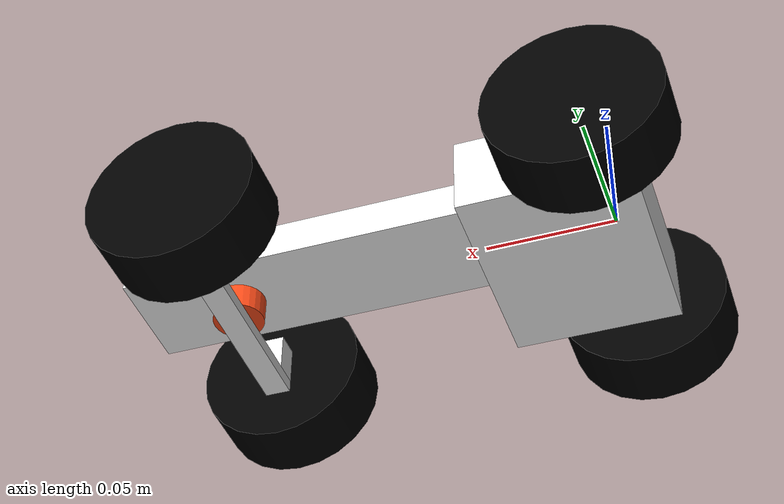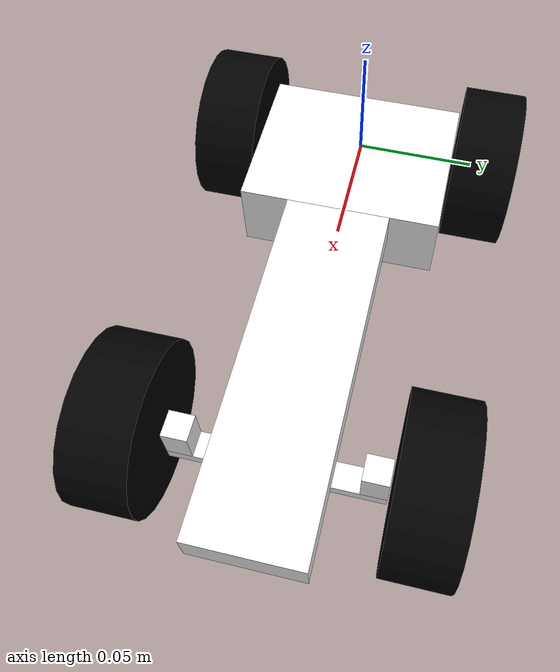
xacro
<?xml version="1.0"?>
<robot xmlns:xacro="http://www.ros.org/wiki/xacro" >

    <xacro:include filename="inertial_macros.xacro"/>

    <material name="white">
        <color rgba="1 1 1 1" />
    </material>

    <material name="orange">
        <color rgba="1 0.3 0.1 1"/>
    </material>

    <material name="blue">
        <color rgba="0.2 0.2 1 1"/>
    </material>

    <material name="black">
        <color rgba="0 0 0 1"/>
    </material>

    <!-- BASE LINK -->

    <link name="base_link">

    </link>

    <!-- CHASSIS LINK 1 -->

    <joint name="chassis_joint1" type="fixed">
        <parent link="base_link"/>
        <child link="chassis1"/>
        <origin xyz="0 0 0"/>
    </joint>

    <link name="chassis1">
        <visual>
            <origin xyz="0.0177 0 0"/>
            <geometry>
                <box size="0.0646 0.0825 0.03175"/>
            </geometry>
            <material name="white"/>
        </visual>
        <collision>
            <origin xyz="0.0177 0 0"/>
            <geometry>
                <box size="0.0646 0.0825 0.03175"/>
            </geometry>
        </collision>
        <xacro:inertial_box mass ="0.15" x="0.0646" y="0.0825" z="0.03175">
            <origin xyz="0.0177 0 0"/>
        </xacro:inertial_box>
    </link>

    <!-- CHASSIS LINK 2 -->

    <joint name="chassis_joint2" type="fixed">
        <parent link="chassis1"/>
        <child link="chassis2"/>
        <origin xyz="0.05 0 0
        "/>
    </joint>

    <link name="chassis2">
        <visual>
            <origin xyz="0.0702 0 0.008375"/>
            <geometry>
                <box size="0.1404 0.0425 0.015"/>
            </geometry>
            <material name="white"/>
        </visual>
        <collision>
            <origin xyz="0.0702 0 0.008375"/>
            <geometry>
                <box size="0.1404 0.0425 0.015"/>
            </geometry>
        </collision>
        <xacro:inertial_box mass ="0.2" x="0.1404" y="0.0425" z="0.015">
            <origin xyz="0.0702 0 0.008375"/>
        </xacro:inertial_box>
    </link>

    <!-- REAR LEFT WHEEL LINK -->

    <joint name="rear_left_wheel_joint" type="continuous">
        <parent link="base_link"/>
        <child link="rear_left_wheel"/>
        <origin xyz="0 0.055 0" rpy="-${pi/2} 0 0"/>
        <axis xyz="0 0 1"/>
    </joint>

    <link name="rear_left_wheel">
        <visual>
            <geometry>
                <cylinder radius="0.033" length="0.0255"/>
            </geometry>
            <material name="black"/>
        </visual>
        <collision>
            <geometry>
                <cylinder radius="0.033" length="0.0255"/>
            </geometry>
        </collision>
        <xacro:inertial_cylinder mass="0.075" length="0.0255" radius="0.033">
            <origin xyz="0 0 0"/>
        </xacro:inertial_cylinder>
    </link>

    <!-- REAR RIGHT WHEEL LINK -->

    <joint name="rear_right_wheel_joint" type="continuous">
        <parent link="base_link"/>
        <child link="rear_right_wheel"/>
        <origin xyz="0 -0.055 0" rpy="${pi/2} 0 0"/>
        <axis xyz="0 0 -1"/>
    </joint>

    <link name="rear_right_wheel">
        <visual>
            <geometry>
                <cylinder radius="0.033" length="0.0255"/>
            </geometry>
            <material name="black"/>
        </visual>
        <collision>
            <geometry>
                <cylinder radius="0.033" length="0.0255"/>
            </geometry>
        </collision>
        <xacro:inertial_cylinder mass="0.075" length="0.0255" radius="0.033">
            <origin xyz="0 0 0" rpy="0 0 0"/>
        </xacro:inertial_cylinder>
    </link>

    <!-- STEERING LINK -->

    <joint name="steer_joint" type="revolute">
        <parent link="base_link"/>
        <child link="steer_link"/>
        <origin xyz="0.150 0 0"/>
        <axis xyz="0 0 1"/>
        <limit lower="-0.5" upper="0.5" effort="0.0" velocity="0.0"/>
    </joint>

    <link name="steer_link">
        <visual>
            <origin xyz="0 0 -0.004125"/>
            <geometry>
                <cylinder radius="0.01" length="0.01"/>
            </geometry>
            <material name="orange"/>
        </visual>
        <collision>
            <origin xyz="0 0 -0.004125"/>
            <geometry>
                <cylinder radius="0.01" length="0.01"/>
            </geometry>
        </collision>
        <xacro:inertial_cylinder mass="0.015" length="0.01" radius="0.01">
            <origin xyz="0 0 -0.004125" rpy="0 0 0"/>
        </xacro:inertial_cylinder>
    </link>

    <!-- CONNECTING ROD -->

    <joint name="connecting_rod_joint" type="fixed">
        <parent link="steer_link"/>
        <child link="connecting_rod_link"/>
        <origin xyz="0 0 -0.009125"/>
    </joint>

    <link name="connecting_rod_link">
        <visual>
            <origin xyz="0 0 -0.0025"/>
            <geometry>
                <box size="0.01 0.0825 0.005"/>
            </geometry>
            <material name="white"/>
        </visual>
        <collision>
            <origin xyz="0 0 -0.0025"/>
            <geometry>
                <box size="0.01 0.0825 0.005"/>
            </geometry>
        </collision>
        <xacro:inertial_box mass ="0.05" x="0.01" y="0.0825" z="0.005">
            <origin xyz="0 0 -0.0025"/>
        </xacro:inertial_box>
    </link>

     <!-- LEFT ROTOR -->

    <joint name="left_rotor_joint" type="fixed">
        <parent link="connecting_rod_link"/>
        <child link="left_rotor_link"/>
        <origin xyz="0 0.04125 0"/>
    </joint>

    <link name="left_rotor_link">
        <visual>
            <origin xyz="0 -0.005 0.0075"/>
            <geometry>
                <box size="0.01 0.01 0.015"/>
            </geometry>
            <material name="white"/>
        </visual>
        <collision>
            <origin xyz="0 -0.005 0.0075"/>
            <geometry>
                <box size="0.01 0.01 0.015"/>
            </geometry>
        </collision>
        <xacro:inertial_box mass ="0.01" x="0.01" y="0.01" z="0.015">
            <origin xyz="0 -0.005 0.0075"/>
        </xacro:inertial_box>
    </link>

    <!-- RIGHT ROTOR -->

    <joint name="right_rotor_joint" type="fixed">
        <parent link="connecting_rod_link"/>
        <child link="right_rotor_link"/>
        <origin xyz="0 -0.04125 0"/>
    </joint>

    <link name="right_rotor_link">
        <visual>
            <origin xyz="0 0.005 0.0075"/>
            <geometry>
                <box size="0.01 0.01 0.015"/>
            </geometry>
            <material name="white"/>
        </visual>
        <collision>
            <origin xyz="0 0.005 0.0075"/>
            <geometry>
                <box size="0.01 0.01 0.015"/>
            </geometry>
        </collision>
        <xacro:inertial_box mass ="0.01" x="0.01" y="0.01" z="0.015">
            <origin xyz="0 0.005 0.0075"/>
        </xacro:inertial_box>
    </link>

    <!-- FRONT LEFT WHEEL LINK -->

    <joint name="front_left_wheel_joint" type="continuous">
        <parent link="left_rotor_link"/>
        <child link="front_left_wheel"/>
        <origin xyz="0 0 0.009125" rpy="-${pi/2} 0 0"/>
        <axis xyz="0 0 1"/>
    </joint>

    <link name="front_left_wheel">
        <visual>
            <origin xyz="0 0 0.01375"/>
            <geometry>
                <cylinder radius="0.033" length="0.0255"/>
            </geometry>
            <material name="black"/>
        </visual>
        <collision>
            <origin xyz="0 0 0.01375"/>
            <geometry>
                <cylinder radius="0.033" length="0.0255"/>
            </geometry>
        </collision>
        <xacro:inertial_cylinder mass="0.075" length="0.0255" radius="0.033">
            <origin xyz="0 0 0.01375" rpy="0 0 0"/>
        </xacro:inertial_cylinder>
    </link>

    <!-- FRONT RIGHT WHEEL LINK -->

    <joint name="front_right_wheel_joint" type="continuous">
        <parent link="right_rotor_link"/>
        <child link="front_right_wheel"/>
        <origin xyz="0 0 0.009125" rpy="${pi/2} 0 0"/>
        <axis xyz="0 0 -1"/>
    </joint>

    <link name="front_right_wheel">
        <visual>
            <origin xyz="0 0 0.01375"/>
            <geometry>
                <cylinder radius="0.033" length="0.0255"/>
            </geometry>
            <material name="black"/>
        </visual>
        <collision>
            <origin xyz="0 0 0.01375"/>
            <geometry>
                <cylinder radius="0.033" length="0.0255"/>
            </geometry>
        </collision>
        <xacro:inertial_cylinder mass="0.075" length="0.0255" radius="0.033">
            <origin xyz="0 0 0.01375" rpy="0 0 0"/>
        </xacro:inertial_cylinder>

    </link>

</robot>
